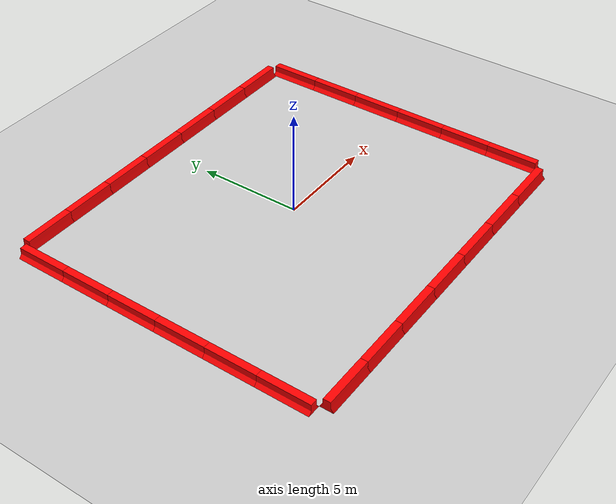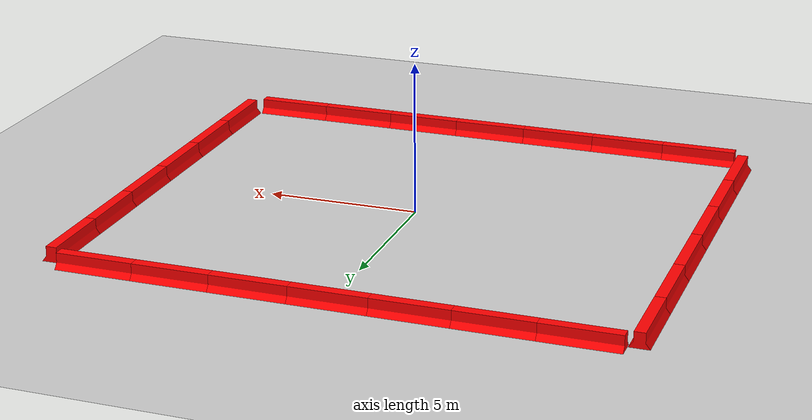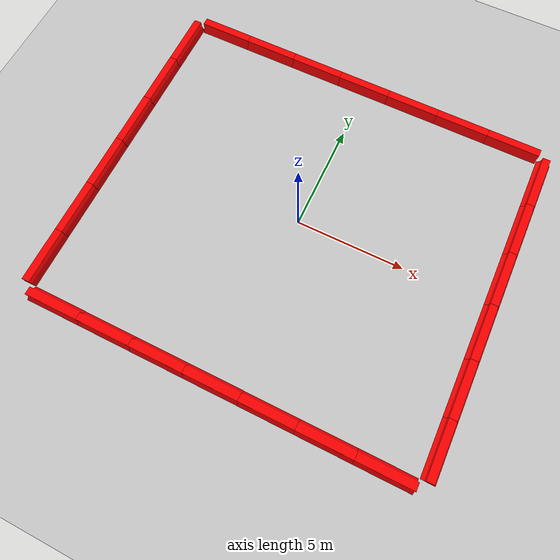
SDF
<?xml version="1.0" ?>
<sdf version="1.8">
    <world name="Moving_robot">
        <physics name="1ms" type="ignored">
            <max_step_size>0.001</max_step_size>
            <real_time_factor>1.0</real_time_factor>
        </physics>
        <plugin
            filename="gz-sim-physics-system"
            name="gz::sim::systems::Physics">
        </plugin>
        <plugin
            filename="gz-sim-user-commands-system"
            name="gz::sim::systems::UserCommands">
        </plugin>
        <plugin
            filename="gz-sim-scene-broadcaster-system"
            name="gz::sim::systems::SceneBroadcaster">
        </plugin>
        <plugin filename="gz-sim-imu-system"
                name="gz::sim::systems::Imu">
        </plugin>

        <light type="directional" name="sun">
            <cast_shadows>true</cast_shadows>
            <pose>0 0 10 0 0 0</pose>
            <diffuse>0.8 0.8 0.8 1</diffuse>
            <specular>0.2 0.2 0.2 1</specular>
            <attenuation>
                <range>1000</range>
                <constant>0.9</constant>
                <linear>0.01</linear>
                <quadratic>0.001</quadratic>
            </attenuation>
            <direction>-0.5 0.1 -0.9</direction>
        </light>

        <model name="ground_plane">
            <static>true</static>
            <link name="link">
                <collision name="collision">
                <geometry>
                    <plane>
                    <normal>0 0 1</normal>
                    </plane>
                </geometry>
                </collision>
                <visual name="visual">
                <geometry>
                    <plane>
                    <normal>0 0 1</normal>
                    <size>100 100</size>
                    </plane>
                </geometry>
                <material>
                    <ambient>0.8 0.8 0.8 1</ambient>
                    <diffuse>0.8 0.8 0.8 1</diffuse>
                    <specular>0.8 0.8 0.8 1</specular>
                </material>
                </visual>
            </link>
        </model>
        <model name='left_side_barrier'>
            <static>1</static>
            <link name='link'>
                <inertial>
                <pose>0 0 0.06016638935108153 0 0 0</pose>
                <mass>3.0049999999999999</mass>
                <inertia>
                    <ixx>0.1125499168053245</ixx>
                    <ixy>0</ixy>
                    <ixz>0</ixz>
                    <iyy>0.1125499168053245</iyy>
                    <iyz>0</iyz>
                    <izz>0.12</izz>
                </inertia>
                </inertial>
                <collision name='collision'>
                <pose>0 0 0.06 0 0 0</pose>
                <geometry>
                    <mesh>
                    <uri>model:///home/zero/wall.stl </uri>
                    <scale>0.01 0.01 0.01</scale>
                   </mesh>
                </geometry>
                </collision>
                <visual name='visual'>
                <geometry>
                    <mesh>
                    <uri>model:///home/zero/wall.stl </uri>
                    <scale>0.01 0.01 0.01</scale>
                   </mesh>
                </geometry>
                <material>
                    <diffuse>1 0 0 1</diffuse>
                    <ambient>1 0 0 1</ambient>
                </material>
                </visual>
                <pose>-7.5 8 0 0 0 -1.57</pose>
                <self_collide>false</self_collide>
            </link>

            <link name='link2'>
                <inertial>
                <pose>0 0 0.06016638935108153 0 0 0</pose>
                <mass>3.0049999999999999</mass>
                <inertia>
                    <ixx>0.1125499168053245</ixx>
                    <ixy>0</ixy>
                    <ixz>0</ixz>
                    <iyy>0.1125499168053245</iyy>
                    <iyz>0</iyz>
                    <izz>0.12</izz>
                </inertia>
                </inertial>
                <collision name='collision'>
                <pose>0 0 0.06 0 0 0</pose>
                <geometry>
                    <mesh>
                    <uri>model:///home/zero/wall.stl </uri>
                    <scale>0.01 0.01 0.01</scale>
                   </mesh>
                </geometry>
                </collision>
                <visual name='visual'>
                <geometry>
                    <mesh>
                    <uri>model:///home/zero/wall.stl </uri>
                    <scale>0.01 0.01 0.01</scale>
                   </mesh>
                </geometry>
                <material>
                    <diffuse>1 0 0 1</diffuse>
                    <ambient>1 0 0 1</ambient>
                </material>
                </visual>
                <pose>-5 8 0 0 0 -1.57</pose>
                <self_collide>false</self_collide>
            </link>

            <link name='link3'>
                <inertial>
                <pose>0 0 0.06016638935108153 0 0 0</pose>
                <mass>3.0049999999999999</mass>
                <inertia>
                    <ixx>0.1125499168053245</ixx>
                    <ixy>0</ixy>
                    <ixz>0</ixz>
                    <iyy>0.1125499168053245</iyy>
                    <iyz>0</iyz>
                    <izz>0.12</izz>
                </inertia>
                </inertial>
                <collision name='collision'>
                <pose>0 0 0.06 0 0 0</pose>
                <geometry>
                    <mesh>
                    <uri>model:///home/zero/wall.stl </uri>
                    <scale>0.01 0.01 0.01</scale>
                   </mesh>
                </geometry>
                </collision>
                <visual name='visual'>
                <geometry>
                    <mesh>
                    <uri>model:///home/zero/wall.stl </uri>
                    <scale>0.01 0.01 0.01</scale>
                   </mesh>
                </geometry>
                <material>
                    <diffuse>1 0 0 1</diffuse>
                    <ambient>1 0 0 1</ambient>
                </material>
                </visual>
                <pose>-2.5 8 0 0 0 -1.57</pose>
                <self_collide>false</self_collide>
            </link>

            <link name='link4'>
                <inertial>
                <pose>0 0 0.06016638935108153 0 0 0</pose>
                <mass>3.0049999999999999</mass>
                <inertia>
                    <ixx>0.1125499168053245</ixx>
                    <ixy>0</ixy>
                    <ixz>0</ixz>
                    <iyy>0.1125499168053245</iyy>
                    <iyz>0</iyz>
                    <izz>0.12</izz>
                </inertia>
                </inertial>
                <collision name='collision'>
                <pose>0 0 0.06 0 0 0</pose>
                <geometry>
                    <mesh>
                    <uri>model:///home/zero/wall.stl </uri>
                    <scale>0.01 0.01 0.01</scale>
                   </mesh>
                </geometry>
                </collision>
                <visual name='visual'>
                <geometry>
                    <mesh>
                    <uri>model:///home/zero/wall.stl </uri>
                    <scale>0.01 0.01 0.01</scale>
                   </mesh>
                </geometry>
                <material>
                    <diffuse>1 0 0 1</diffuse>
                    <ambient>1 0 0 1</ambient>
                </material>
                </visual>
                <pose>0 8 0 0 0 -1.57</pose>
                <self_collide>false</self_collide>
            </link>

            <link name='link5'>
                <inertial>
                <pose>0 0 0.06016638935108153 0 0 0</pose>
                <mass>3.0049999999999999</mass>
                <inertia>
                    <ixx>0.1125499168053245</ixx>
                    <ixy>0</ixy>
                    <ixz>0</ixz>
                    <iyy>0.1125499168053245</iyy>
                    <iyz>0</iyz>
                    <izz>0.12</izz>
                </inertia>
                </inertial>
                <collision name='collision'>
                <pose>0 0 0.06 0 0 0</pose>
                <geometry>
                    <mesh>
                    <uri>model:///home/zero/wall.stl </uri>
                    <scale>0.01 0.01 0.01</scale>
                   </mesh>
                </geometry>
                </collision>
                <visual name='visual'>
                <geometry>
                    <mesh>
                    <uri>model:///home/zero/wall.stl </uri>
                    <scale>0.01 0.01 0.01</scale>
                   </mesh>
                </geometry>
                <material>
                    <diffuse>1 0 0 1</diffuse>
                    <ambient>1 0 0 1</ambient>
                </material>
                </visual>
                <pose>2.5 8 0 0 0 -1.57</pose>
                <self_collide>false</self_collide>
            </link>

            <link name='link6'>
                <inertial>
                <pose>0 0 0.06016638935108153 0 0 0</pose>
                <mass>3.0049999999999999</mass>
                <inertia>
                    <ixx>0.1125499168053245</ixx>
                    <ixy>0</ixy>
                    <ixz>0</ixz>
                    <iyy>0.1125499168053245</iyy>
                    <iyz>0</iyz>
                    <izz>0.12</izz>
                </inertia>
                </inertial>
                <collision name='collision'>
                <pose>0 0 0.06 0 0 0</pose>
                <geometry>
                    <mesh>
                    <uri>model:///home/zero/wall.stl </uri>
                    <scale>0.01 0.01 0.01</scale>
                   </mesh>
                </geometry>
                </collision>
                <visual name='visual'>
                <geometry>
                    <mesh>
                    <uri>model:///home/zero/wall.stl </uri>
                    <scale>0.01 0.01 0.01</scale>
                   </mesh>
                </geometry>
                <material>
                    <diffuse>1 0 0 1</diffuse>
                    <ambient>1 0 0 1</ambient>
                </material>
                </visual>
                <pose>5 8 0 0 0 -1.57</pose>
                <self_collide>false</self_collide>
            </link>

            <link name='link7'>
                <inertial>
                <pose>0 0 0.06016638935108153 0 0 0</pose>
                <mass>3.0049999999999999</mass>
                <inertia>
                    <ixx>0.1125499168053245</ixx>
                    <ixy>0</ixy>
                    <ixz>0</ixz>
                    <iyy>0.1125499168053245</iyy>
                    <iyz>0</iyz>
                    <izz>0.12</izz>
                </inertia>
                </inertial>
                <collision name='collision'>
                <pose>0 0 0.06 0 0 0</pose>
                <geometry>
                    <mesh>
                    <uri>model:///home/zero/wall.stl </uri>
                    <scale>0.01 0.01 0.01</scale>
                   </mesh>
                </geometry>
                </collision>
                <visual name='visual'>
                <geometry>
                    <mesh>
                    <uri>model:///home/zero/wall.stl </uri>
                    <scale>0.01 0.01 0.01</scale>
                   </mesh>
                </geometry>
                <material>
                    <diffuse>1 0 0 1</diffuse>
                    <ambient>1 0 0 1</ambient>
                </material>
                </visual>
                <pose>7.5 8 0 0 0 -1.57</pose>
                <self_collide>false</self_collide>
            </link>
        </model>

        <model name='right_side_barrier'>
            <static>1</static>
            <link name='link'>
                <inertial>
                <pose>0 0 0.06016638935108153 0 0 0</pose>
                <mass>3.0049999999999999</mass>
                <inertia>
                    <ixx>0.1125499168053245</ixx>
                    <ixy>0</ixy>
                    <ixz>0</ixz>
                    <iyy>0.1125499168053245</iyy>
                    <iyz>0</iyz>
                    <izz>0.12</izz>
                </inertia>
                </inertial>
                <collision name='collision'>
                <pose>0 0 0.06 0 0 0</pose>
                <geometry>
                    <mesh>
                    <uri>model:///home/zero/wall.stl </uri>
                    <scale>0.01 0.01 0.01</scale>
                   </mesh>
                </geometry>
                </collision>
                <visual name='visual'>
                <geometry>
                    <mesh>
                    <uri>model:///home/zero/wall.stl </uri>
                    <scale>0.01 0.01 0.01</scale>
                   </mesh>
                </geometry>
                <material>
                    <diffuse>1 0 0 1</diffuse>
                    <ambient>1 0 0 1</ambient>
                </material>
                </visual>
                <pose>-7.5 -7.5 0 0 0 -1.57</pose>
                <self_collide>false</self_collide>
            </link>

            <link name='link2'>
                <inertial>
                <pose>0 0 0.06016638935108153 0 0 0</pose>
                <mass>3.0049999999999999</mass>
                <inertia>
                    <ixx>0.1125499168053245</ixx>
                    <ixy>0</ixy>
                    <ixz>0</ixz>
                    <iyy>0.1125499168053245</iyy>
                    <iyz>0</iyz>
                    <izz>0.12</izz>
                </inertia>
                </inertial>
                <collision name='collision'>
                <pose>0 0 0.06 0 0 0</pose>
                <geometry>
                    <mesh>
                    <uri>model:///home/zero/wall.stl </uri>
                    <scale>0.01 0.01 0.01</scale>
                   </mesh>
                </geometry>
                </collision>
                <visual name='visual'>
                <geometry>
                    <mesh>
                    <uri>model:///home/zero/wall.stl </uri>
                    <scale>0.01 0.01 0.01</scale>
                   </mesh>
                </geometry>
                <material>
                    <diffuse>1 0 0 1</diffuse>
                    <ambient>1 0 0 1</ambient>
                </material>
                </visual>
                <pose>-5 -7.5 0 0 0 -1.57</pose>
                <self_collide>false</self_collide>
            </link>

            <link name='link3'>
                <inertial>
                <pose>0 0 0.06016638935108153 0 0 0</pose>
                <mass>3.0049999999999999</mass>
                <inertia>
                    <ixx>0.1125499168053245</ixx>
                    <ixy>0</ixy>
                    <ixz>0</ixz>
                    <iyy>0.1125499168053245</iyy>
                    <iyz>0</iyz>
                    <izz>0.12</izz>
                </inertia>
                </inertial>
                <collision name='collision'>
                <pose>0 0 0.06 0 0 0</pose>
                <geometry>
                    <mesh>
                    <uri>model:///home/zero/wall.stl </uri>
                    <scale>0.01 0.01 0.01</scale>
                   </mesh>
                </geometry>
                </collision>
                <visual name='visual'>
                <geometry>
                    <mesh>
                    <uri>model:///home/zero/wall.stl </uri>
                    <scale>0.01 0.01 0.01</scale>
                   </mesh>
                </geometry>
                <material>
                    <diffuse>1 0 0 1</diffuse>
                    <ambient>1 0 0 1</ambient>
                </material>
                </visual>
                <pose>-2.5 -7.5 0 0 0 -1.57</pose>
                <self_collide>false</self_collide>
            </link>

            <link name='link4'>
                <inertial>
                <pose>0 0 0.06016638935108153 0 0 0</pose>
                <mass>3.0049999999999999</mass>
                <inertia>
                    <ixx>0.1125499168053245</ixx>
                    <ixy>0</ixy>
                    <ixz>0</ixz>
                    <iyy>0.1125499168053245</iyy>
                    <iyz>0</iyz>
                    <izz>0.12</izz>
                </inertia>
                </inertial>
                <collision name='collision'>
                <pose>0 0 0.06 0 0 0</pose>
                <geometry>
                    <mesh>
                    <uri>model:///home/zero/wall.stl </uri>
                    <scale>0.01 0.01 0.01</scale>
                   </mesh>
                </geometry>
                </collision>
                <visual name='visual'>
                <geometry>
                    <mesh>
                    <uri>model:///home/zero/wall.stl </uri>
                    <scale>0.01 0.01 0.01</scale>
                   </mesh>
                </geometry>
                <material>
                    <diffuse>1 0 0 1</diffuse>
                    <ambient>1 0 0 1</ambient>
                </material>
                </visual>
                <pose>0 -7.5 0 0 0 -1.57</pose>
                <self_collide>false</self_collide>
            </link>

            <link name='link5'>
                <inertial>
                <pose>0 0 0.06016638935108153 0 0 0</pose>
                <mass>3.0049999999999999</mass>
                <inertia>
                    <ixx>0.1125499168053245</ixx>
                    <ixy>0</ixy>
                    <ixz>0</ixz>
                    <iyy>0.1125499168053245</iyy>
                    <iyz>0</iyz>
                    <izz>0.12</izz>
                </inertia>
                </inertial>
                <collision name='collision'>
                <pose>0 0 0.06 0 0 0</pose>
                <geometry>
                    <mesh>
                    <uri>model:///home/zero/wall.stl </uri>
                    <scale>0.01 0.01 0.01</scale>
                   </mesh>
                </geometry>
                </collision>
                <visual name='visual'>
                <geometry>
                    <mesh>
                    <uri>model:///home/zero/wall.stl </uri>
                    <scale>0.01 0.01 0.01</scale>
                   </mesh>
                </geometry>
                <material>
                    <diffuse>1 0 0 1</diffuse>
                    <ambient>1 0 0 1</ambient>
                </material>
                </visual>
                <pose>2.5 -7.5 0 0 0 -1.57</pose>
                <self_collide>false</self_collide>
            </link>

            <link name='link6'>
                <inertial>
                <pose>0 0 0.06016638935108153 0 0 0</pose>
                <mass>3.0049999999999999</mass>
                <inertia>
                    <ixx>0.1125499168053245</ixx>
                    <ixy>0</ixy>
                    <ixz>0</ixz>
                    <iyy>0.1125499168053245</iyy>
                    <iyz>0</iyz>
                    <izz>0.12</izz>
                </inertia>
                </inertial>
                <collision name='collision'>
                <pose>0 0 0.06 0 0 0</pose>
                <geometry>
                    <mesh>
                    <uri>model:///home/zero/wall.stl </uri>
                    <scale>0.01 0.01 0.01</scale>
                   </mesh>
                </geometry>
                </collision>
                <visual name='visual'>
                <geometry>
                    <mesh>
                    <uri>model:///home/zero/wall.stl </uri>
                    <scale>0.01 0.01 0.01</scale>
                   </mesh>
                </geometry>
                <material>
                    <diffuse>1 0 0 1</diffuse>
                    <ambient>1 0 0 1</ambient>
                </material>
                </visual>
                <pose>5 -7.5 0 0 0 -1.57</pose>
                <self_collide>false</self_collide>
            </link>

            <link name='link7'>
                <inertial>
                <pose>0 0 0.06016638935108153 0 0 0</pose>
                <mass>3.0049999999999999</mass>
                <inertia>
                    <ixx>0.1125499168053245</ixx>
                    <ixy>0</ixy>
                    <ixz>0</ixz>
                    <iyy>0.1125499168053245</iyy>
                    <iyz>0</iyz>
                    <izz>0.12</izz>
                </inertia>
                </inertial>
                <collision name='collision'>
                <pose>0 0 0.06 0 0 0</pose>
                <geometry>
                    <mesh>
                    <uri>model:///home/zero/wall.stl </uri>
                    <scale>0.01 0.01 0.01</scale>
                   </mesh>
                </geometry>
                </collision>
                <visual name='visual'>
                <geometry>
                    <mesh>
                    <uri>model:///home/zero/wall.stl </uri>
                    <scale>0.01 0.01 0.01</scale>
                   </mesh>
                </geometry>
                <material>
                    <diffuse>1 0 0 1</diffuse>
                    <ambient>1 0 0 1</ambient>
                </material>
                </visual>
                <pose>7.5 -7.5 0 0 0 -1.57</pose>
                <self_collide>false</self_collide>
            </link>
        </model>

        <model name='top_side_barrier'>
            <static>1</static>
            <link name='link'>
                <inertial>
                <pose>0 0 0.06016638935108153 0 0 0</pose>
                <mass>3.0049999999999999</mass>
                <inertia>
                    <ixx>0.1125499168053245</ixx>
                    <ixy>0</ixy>
                    <ixz>0</ixz>
                    <iyy>0.1125499168053245</iyy>
                    <iyz>0</iyz>
                    <izz>0.12</izz>
                </inertia>
                </inertial>
                <collision name='collision'>
                <pose>0 0 0.06 0 0 0</pose>
                <geometry>
                    <mesh>
                    <uri>model:///home/zero/wall.stl </uri>
                    <scale>0.01 0.01 0.01</scale>
                   </mesh>
                </geometry>
                </collision>
                <visual name='visual'>
                <geometry>
                    <mesh>
                    <uri>model:///home/zero/wall.stl </uri>
                    <scale>0.01 0.01 0.01</scale>
                   </mesh>
                </geometry>
                <material>
                    <diffuse>1 0 0 1</diffuse>
                    <ambient>1 0 0 1</ambient>
                </material>
                </visual>
                <pose>-9.5 6.36 0 0 0 0</pose>
                <self_collide>false</self_collide>
            </link>
            <link name='link2'>
                <inertial>
                <pose>0 0 0.06016638935108153 0 0 0</pose>
                <mass>3.0049999999999999</mass>
                <inertia>
                    <ixx>0.1125499168053245</ixx>
                    <ixy>0</ixy>
                    <ixz>0</ixz>
                    <iyy>0.1125499168053245</iyy>
                    <iyz>0</iyz>
                    <izz>0.12</izz>
                </inertia>
                </inertial>
                <collision name='collision'>
                <pose>0 0 0.06 0 0 0</pose>
                <geometry>
                    <mesh>
                    <uri>model:///home/zero/wall.stl </uri>
                    <scale>0.01 0.01 0.01</scale>
                   </mesh>
                </geometry>
                </collision>
                <visual name='visual'>
                <geometry>
                    <mesh>
                    <uri>model:///home/zero/wall.stl </uri>
                    <scale>0.01 0.01 0.01</scale>
                   </mesh>
                </geometry>
                <material>
                    <diffuse>1 0 0 1</diffuse>
                    <ambient>1 0 0 1</ambient>
                </material>
                </visual>
                <pose>-9.5 3.86 0 0 0 0</pose>
                <self_collide>false</self_collide>
            </link>
            <link name='link3'>
                <inertial>
                <pose>0 0 0.06016638935108153 0 0 0</pose>
                <mass>3.0049999999999999</mass>
                <inertia>
                    <ixx>0.1125499168053245</ixx>
                    <ixy>0</ixy>
                    <ixz>0</ixz>
                    <iyy>0.1125499168053245</iyy>
                    <iyz>0</iyz>
                    <izz>0.12</izz>
                </inertia>
                </inertial>
                <collision name='collision'>
                <pose>0 0 0.06 0 0 0</pose>
                <geometry>
                    <mesh>
                    <uri>model:///home/zero/wall.stl </uri>
                    <scale>0.01 0.01 0.01</scale>
                   </mesh>
                </geometry>
                </collision>
                <visual name='visual'>
                <geometry>
                    <mesh>
                    <uri>model:///home/zero/wall.stl </uri>
                    <scale>0.01 0.01 0.01</scale>
                   </mesh>
                </geometry>
                <material>
                    <diffuse>1 0 0 1</diffuse>
                    <ambient>1 0 0 1</ambient>
                </material>
                </visual>
                <pose>-9.5 1.36 0 0 0 0</pose>
                <self_collide>false</self_collide>
            </link>

            <link name='link4'>
                <inertial>
                <pose>0 0 0.06016638935108153 0 0 0</pose>
                <mass>3.0049999999999999</mass>
                <inertia>
                    <ixx>0.1125499168053245</ixx>
                    <ixy>0</ixy>
                    <ixz>0</ixz>
                    <iyy>0.1125499168053245</iyy>
                    <iyz>0</iyz>
                    <izz>0.12</izz>
                </inertia>
                </inertial>
                <collision name='collision'>
                <pose>0 0 0.06 0 0 0</pose>
                <geometry>
                    <mesh>
                    <uri>model:///home/zero/wall.stl </uri>
                    <scale>0.01 0.01 0.01</scale>
                   </mesh>
                </geometry>
                </collision>
                <visual name='visual'>
                <geometry>
                    <mesh>
                    <uri>model:///home/zero/wall.stl </uri>
                    <scale>0.01 0.01 0.01</scale>
                   </mesh>
                </geometry>
                <material>
                    <diffuse>1 0 0 1</diffuse>
                    <ambient>1 0 0 1</ambient>
                </material>
                </visual>
                <pose>-9.5 -1.14 0 0 0 0</pose>
                <self_collide>false</self_collide>
            </link>

            <link name='link5'>
                <inertial>
                <pose>0 0 0.06016638935108153 0 0 0</pose>
                <mass>3.0049999999999999</mass>
                <inertia>
                    <ixx>0.1125499168053245</ixx>
                    <ixy>0</ixy>
                    <ixz>0</ixz>
                    <iyy>0.1125499168053245</iyy>
                    <iyz>0</iyz>
                    <izz>0.12</izz>
                </inertia>
                </inertial>
                <collision name='collision'>
                <pose>0 0 0.06 0 0 0</pose>
                <geometry>
                    <mesh>
                    <uri>model:///home/zero/wall.stl </uri>
                    <scale>0.01 0.01 0.01</scale>
                   </mesh>
                </geometry>
                </collision>
                <visual name='visual'>
                <geometry>
                    <mesh>
                    <uri>model:///home/zero/wall.stl </uri>
                    <scale>0.01 0.01 0.01</scale>
                   </mesh>
                </geometry>
                <material>
                    <diffuse>1 0 0 1</diffuse>
                    <ambient>1 0 0 1</ambient>
                </material>
                </visual>
                <pose>-9.5 -3.64 0 0 0 0</pose>
                <self_collide>false</self_collide>
            </link>

            <link name='link6'>
                <inertial>
                <pose>0 0 0.06016638935108153 0 0 0</pose>
                <mass>3.0049999999999999</mass>
                <inertia>
                    <ixx>0.1125499168053245</ixx>
                    <ixy>0</ixy>
                    <ixz>0</ixz>
                    <iyy>0.1125499168053245</iyy>
                    <iyz>0</iyz>
                    <izz>0.12</izz>
                </inertia>
                </inertial>
                <collision name='collision'>
                <pose>0 0 0.06 0 0 0</pose>
                <geometry>
                    <mesh>
                    <uri>model:///home/zero/wall.stl </uri>
                    <scale>0.01 0.01 0.01</scale>
                   </mesh>
                </geometry>
                </collision>
                <visual name='visual'>
                <geometry>
                    <mesh>
                    <uri>model:///home/zero/wall.stl </uri>
                    <scale>0.01 0.01 0.01</scale>
                   </mesh>
                </geometry>
                <material>
                    <diffuse>1 0 0 1</diffuse>
                    <ambient>1 0 0 1</ambient>
                </material>
                </visual>
                <pose>-9.5 -6.14 0 0 0 0</pose>
                <self_collide>false</self_collide>
            </link>
        </model>

        <model name='bottom_side_barrier'>
            <static>1</static>
            <link name='link'>
                <inertial>
                <pose>0 0 0.06016638935108153 0 0 0</pose>
                <mass>3.0049999999999999</mass>
                <inertia>
                    <ixx>0.1125499168053245</ixx>
                    <ixy>0</ixy>
                    <ixz>0</ixz>
                    <iyy>0.1125499168053245</iyy>
                    <iyz>0</iyz>
                    <izz>0.12</izz>
                </inertia>
                </inertial>
                <collision name='collision'>
                <pose>0 0 0.06 0 0 0</pose>
                <geometry>
                    <mesh>
                    <uri>model:///home/zero/wall.stl </uri>
                    <scale>0.01 0.01 0.01</scale>
                   </mesh>
                </geometry>
                </collision>
                <visual name='visual'>
                <geometry>
                    <mesh>
                    <uri>model:///home/zero/wall.stl </uri>
                    <scale>0.01 0.01 0.01</scale>
                   </mesh>
                </geometry>
                <material>
                    <diffuse>1 0 0 1</diffuse>
                    <ambient>1 0 0 1</ambient>
                </material>
                </visual>
                <pose>8.7 6.36 0 0 0 0</pose>
                <self_collide>false</self_collide>
            </link>
            <link name='link2'>
                <inertial>
                <pose>0 0 0.06016638935108153 0 0 0</pose>
                <mass>3.0049999999999999</mass>
                <inertia>
                    <ixx>0.1125499168053245</ixx>
                    <ixy>0</ixy>
                    <ixz>0</ixz>
                    <iyy>0.1125499168053245</iyy>
                    <iyz>0</iyz>
                    <izz>0.12</izz>
                </inertia>
                </inertial>
                <collision name='collision'>
                <pose>0 0 0.06 0 0 0</pose>
                <geometry>
                    <mesh>
                    <uri>model:///home/zero/wall.stl </uri>
                    <scale>0.01 0.01 0.01</scale>
                   </mesh>
                </geometry>
                </collision>
                <visual name='visual'>
                <geometry>
                    <mesh>
                    <uri>model:///home/zero/wall.stl </uri>
                    <scale>0.01 0.01 0.01</scale>
                   </mesh>
                </geometry>
                <material>
                    <diffuse>1 0 0 1</diffuse>
                    <ambient>1 0 0 1</ambient>
                </material>
                </visual>
                <pose>8.7 3.86 0 0 0 0</pose>
                <self_collide>false</self_collide>
            </link>
            <link name='link3'>
                <inertial>
                <pose>0 0 0.06016638935108153 0 0 0</pose>
                <mass>3.0049999999999999</mass>
                <inertia>
                    <ixx>0.1125499168053245</ixx>
                    <ixy>0</ixy>
                    <ixz>0</ixz>
                    <iyy>0.1125499168053245</iyy>
                    <iyz>0</iyz>
                    <izz>0.12</izz>
                </inertia>
                </inertial>
                <collision name='collision'>
                <pose>0 0 0.06 0 0 0</pose>
                <geometry>
                    <mesh>
                    <uri>model:///home/zero/wall.stl </uri>
                    <scale>0.01 0.01 0.01</scale>
                   </mesh>
                </geometry>
                </collision>
                <visual name='visual'>
                <geometry>
                    <mesh>
                    <uri>model:///home/zero/wall.stl </uri>
                    <scale>0.01 0.01 0.01</scale>
                   </mesh>
                </geometry>
                <material>
                    <diffuse>1 0 0 1</diffuse>
                    <ambient>1 0 0 1</ambient>
                </material>
                </visual>
                <pose>8.7 1.36 0 0 0 0</pose>
                <self_collide>false</self_collide>
            </link>

            <link name='link4'>
                <inertial>
                <pose>0 0 0.06016638935108153 0 0 0</pose>
                <mass>3.0049999999999999</mass>
                <inertia>
                    <ixx>0.1125499168053245</ixx>
                    <ixy>0</ixy>
                    <ixz>0</ixz>
                    <iyy>0.1125499168053245</iyy>
                    <iyz>0</iyz>
                    <izz>0.12</izz>
                </inertia>
                </inertial>
                <collision name='collision'>
                <pose>0 0 0.06 0 0 0</pose>
                <geometry>
                    <mesh>
                    <uri>model:///home/zero/wall.stl </uri>
                    <scale>0.01 0.01 0.01</scale>
                   </mesh>
                </geometry>
                </collision>
                <visual name='visual'>
                <geometry>
                    <mesh>
                    <uri>model:///home/zero/wall.stl </uri>
                    <scale>0.01 0.01 0.01</scale>
                   </mesh>
                </geometry>
                <material>
                    <diffuse>1 0 0 1</diffuse>
                    <ambient>1 0 0 1</ambient>
                </material>
                </visual>
                <pose>8.7 -1.14 0 0 0 0</pose>
                <self_collide>false</self_collide>
            </link>

            <link name='link5'>
                <inertial>
                <pose>0 0 0.06016638935108153 0 0 0</pose>
                <mass>3.0049999999999999</mass>
                <inertia>
                    <ixx>0.1125499168053245</ixx>
                    <ixy>0</ixy>
                    <ixz>0</ixz>
                    <iyy>0.1125499168053245</iyy>
                    <iyz>0</iyz>
                    <izz>0.12</izz>
                </inertia>
                </inertial>
                <collision name='collision'>
                <pose>0 0 0.06 0 0 0</pose>
                <geometry>
                    <mesh>
                    <uri>model:///home/zero/wall.stl </uri>
                    <scale>0.01 0.01 0.01</scale>
                   </mesh>
                </geometry>
                </collision>
                <visual name='visual'>
                <geometry>
                    <mesh>
                    <uri>model:///home/zero/wall.stl </uri>
                    <scale>0.01 0.01 0.01</scale>
                   </mesh>
                </geometry>
                <material>
                    <diffuse>1 0 0 1</diffuse>
                    <ambient>1 0 0 1</ambient>
                </material>
                </visual>
                <pose>8.7 -3.64 0 0 0 0</pose>
                <self_collide>false</self_collide>
            </link>

            <link name='link6'>
                <inertial>
                <pose>0 0 0.06016638935108153 0 0 0</pose>
                <mass>3.0049999999999999</mass>
                <inertia>
                    <ixx>0.1125499168053245</ixx>
                    <ixy>0</ixy>
                    <ixz>0</ixz>
                    <iyy>0.1125499168053245</iyy>
                    <iyz>0</iyz>
                    <izz>0.12</izz>
                </inertia>
                </inertial>
                <collision name='collision'>
                <pose>0 0 0.06 0 0 0</pose>
                <geometry>
                    <mesh>
                    <uri>model:///home/zero/wall.stl </uri>
                    <scale>0.01 0.01 0.01</scale>
                   </mesh>
                </geometry>
                </collision>
                <visual name='visual'>
                <geometry>
                    <mesh>
                    <uri>model:///home/zero/wall.stl </uri>
                    <scale>0.01 0.01 0.01</scale>
                   </mesh>
                </geometry>
                <material>
                    <diffuse>1 0 0 1</diffuse>
                    <ambient>1 0 0 1</ambient>
                </material>
                </visual>
                <pose>8.7 -6.14 0 0 0 0</pose>
                <self_collide>false</self_collide>
            </link>
        </model>
    </world>
</sdf>
